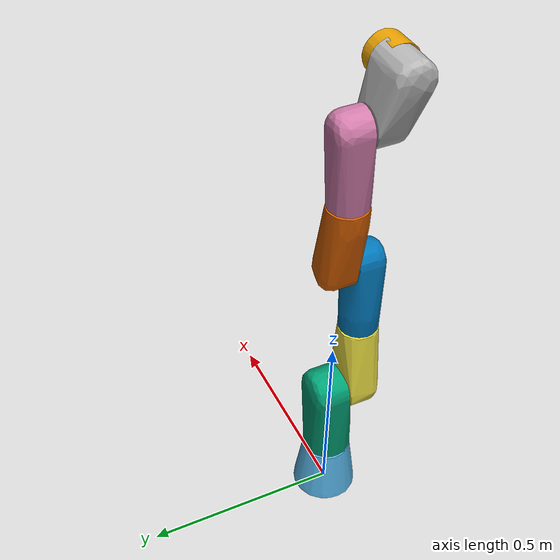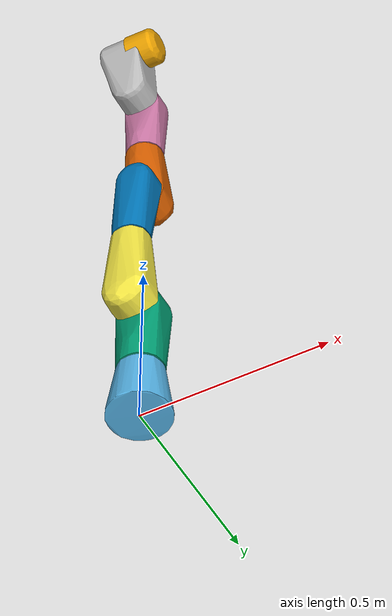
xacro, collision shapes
<?xml version="1.0" encoding="utf-8"?>

<robot xmlns:xacro="http://www.ros.org/wiki/xacro" name="rizon">
  <!-- 'rizon_type' values: Rizon4, Rizon4s, Rizon10, Rizon10s -->
  <xacro:arg name="rizon_type" default="Rizon4" />

  <!-- import main macro -->
  <xacro:include filename="$(find flexiv_description)/urdf/rizon_macro.xacro" />

  <!-- parameters -->
  <xacro:arg name="arm_prefix" default="" />
  <xacro:arg name="robot_sn" default="" />
  <xacro:arg name="rdk_control_mode" default="joint_position" />
  <xacro:arg name="load_gripper" default="false" />
  <xacro:arg name="gripper_name" default="Flexiv-GN01" />
  <xacro:arg name="load_mounted_ft_sensor" default="false" />
  <xacro:arg name="use_fake_hardware" default="false" />
  <xacro:arg name="fake_sensor_commands" default="false" />

  <xacro:rizon_robot
    rizon_type="$(arg rizon_type)"
    arm_prefix="$(arg arm_prefix)"
    robot_sn="$(arg robot_sn)"
    rdk_control_mode="$(arg rdk_control_mode)"
    load_gripper="$(arg load_gripper)"
    gripper_name="$(arg gripper_name)"
    use_fake_hardware="$(arg use_fake_hardware)"
    load_mounted_ft_sensor="$(arg load_mounted_ft_sensor)"
    fake_sensor_commands="$(arg fake_sensor_commands)">
  </xacro:rizon_robot>

</robot>

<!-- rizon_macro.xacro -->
<robot xmlns:xacro="http://wiki.ros.org/xacro">

  <xacro:macro name="rizon_robot"
    params="
    rizon_type
    arm_prefix
    robot_sn
    rdk_control_mode:='joint_position'
    load_gripper:=false
    gripper_name:='Flexiv-GN01'
    load_mounted_ft_sensor:=false
    use_fake_hardware:=false
    fake_sensor_commands:=false
    ">

    <!-- Prefix defaults to 'arm_prefix_robot_sn' -->
    <xacro:property name="prefix" value="${arm_prefix + robot_sn + '_'}" />

    <!-- FT sensor mounting only supported for Rizon4, Rizon4R and Rizon10 -->
    <xacro:unless value="${rizon_type=='Rizon4' or rizon_type=='Rizon4R' or rizon_type=='Rizon10'}">
      <xacro:property name="load_mounted_ft_sensor" value="false" />
    </xacro:unless>

    <!-- Load gripper -->
    <xacro:if value="${load_gripper and gripper_name=='Flexiv-GN01'}">
      <xacro:include filename="$(find flexiv_description)/urdf/grav_macro.xacro" />
      <xacro:flexiv_GN01 prefix="${prefix}" mesh_prefix_path="package://flexiv_description/" />
    </xacro:if>

    <!-- Rizon4, Rizon4M, Rizon4R or Rizon4s -->
    <xacro:if
      value="${rizon_type=='Rizon4' or rizon_type=='Rizon4M' or rizon_type=='Rizon4R' or rizon_type=='Rizon4s'}">
      <!-- Rizon4R -->
      <xacro:if value="${rizon_type=='Rizon4R'}">
        <xacro:include filename="$(find flexiv_description)/urdf/rizon4r_joints_links.xacro" />
        <xacro:rizon4r_joints_links rizon_type="${rizon_type}" prefix="${prefix}"
          load_mounted_ft_sensor="${load_mounted_ft_sensor}"
          mesh_prefix_path="package://flexiv_description/" />
      </xacro:if>

      <!-- Rizon4, Rizon4M or Rizon4s -->
      <xacro:unless value="${rizon_type=='Rizon4R'}">
        <xacro:include filename="$(find flexiv_description)/urdf/rizon4_joints_links.xacro" />
        <xacro:rizon4_joints_links rizon_type="${rizon_type}" prefix="${prefix}"
          load_mounted_ft_sensor="${load_mounted_ft_sensor}"
          mesh_prefix_path="package://flexiv_description/" />
      </xacro:unless>

      <!-- ros2 control include -->
      <xacro:include filename="$(find flexiv_description)/urdf/rizon4.ros2_control.xacro" />
      <xacro:rizon4_ros2_control prefix="${prefix}" robot_sn="${robot_sn}"
        rdk_control_mode="${rdk_control_mode}"
        use_fake_hardware="${use_fake_hardware}"
        fake_sensor_commands="${fake_sensor_commands}"
      />
    </xacro:if>

    <!-- Rizon10 or 10s-->
    <xacro:if value="${rizon_type=='Rizon10' or rizon_type=='Rizon10s'}">
      <xacro:include filename="$(find flexiv_description)/urdf/rizon10_joints_links.xacro" />
      <xacro:rizon10_joints_links rizon_type="${rizon_type}" prefix="${prefix}"
        load_mounted_ft_sensor="${load_mounted_ft_sensor}"
        mesh_prefix_path="package://flexiv_description/" />

      <!-- ros2 control include -->
      <xacro:include filename="$(find flexiv_description)/urdf/rizon10.ros2_control.xacro" />
      <xacro:rizon10_ros2_control prefix="${prefix}" robot_sn="${robot_sn}"
        rdk_control_mode="${rdk_control_mode}"
        use_fake_hardware="${use_fake_hardware}"
        fake_sensor_commands="${fake_sensor_commands}"
      />
    </xacro:if>

  </xacro:macro>

</robot>

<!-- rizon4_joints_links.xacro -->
<robot xmlns:xacro="http://www.ros.org/wiki/xacro">

  <xacro:macro name="rizon4_joints_links"
    params="rizon_type prefix load_mounted_ft_sensor mesh_prefix_path">

    <!-- JOINTS-->
    <joint name="${prefix}base_joint" type="fixed">
      <parent link="world" />
      <child link="${prefix}base_link" />
      <origin xyz="0.0 0.0 0.0" rpy="0.0 0.0 0.0" />
    </joint>

    <joint name="${prefix}joint1" type="revolute">
      <parent link="${prefix}base_link" />
      <child link="${prefix}link1" />
      <origin xyz="0.0 0.0 0.155" rpy="0 0 ${-pi}" />
      <axis xyz="0 0 1" />
      <limit effort="123" lower="-2.8798" upper="2.8798" velocity="2.0944" />
      <safety_controller k_position="100.0" k_velocity="40.0" soft_lower_limit="-2.7925"
        soft_upper_limit="2.7925" />
    </joint>

    <joint name="${prefix}joint2" type="revolute">
      <parent link="${prefix}link1" />
      <child link="${prefix}link2" />
      <origin xyz="0.0 0.03 0.210" rpy="0 0 0" />
      <axis xyz="0 1 0" />
      <limit effort="123" lower="-2.3562" upper="2.3562" velocity="2.0944" />
      <safety_controller k_position="100.0" k_velocity="40.0" soft_lower_limit="-2.2689"
        soft_upper_limit="2.2689" />
    </joint>

    <joint name="${prefix}joint3" type="revolute">
      <parent link="${prefix}link2" />
      <child link="${prefix}link3" />
      <origin xyz="0.0 0.035 0.205" rpy="0 0 0" />
      <axis xyz="0 0 1" />
      <limit effort="64" lower="-3.0543" upper="3.0543" velocity="2.4435" />
      <safety_controller k_position="100.0" k_velocity="40.0" soft_lower_limit="-2.9671"
        soft_upper_limit="2.9671" />
    </joint>

    <joint name="${prefix}joint4" type="revolute">
      <parent link="${prefix}link3" />
      <child link="${prefix}link4" />
      <origin xyz="-0.02 -0.03 0.19" rpy="0 0 ${-pi}" />
      <axis xyz="0 1 0" />
      <limit effort="64" lower="-1.9548" upper="2.7751" velocity="2.4435" />
      <safety_controller k_position="100.0" k_velocity="40.0" soft_lower_limit="-1.8675"
        soft_upper_limit="2.6878" />
    </joint>

    <joint name="${prefix}joint5" type="revolute">
      <parent link="${prefix}link4" />
      <child link="${prefix}link5" />
      <origin xyz="-0.02 0.025 0.195" rpy="0 0 ${-pi}" />
      <axis xyz="0 0 1" />
      <limit effort="39" lower="-3.0543" upper="3.0543" velocity="4.8869" />
      <safety_controller k_position="100.0" k_velocity="40.0" soft_lower_limit="-2.9671"
        soft_upper_limit="2.9671" />
    </joint>

    <joint name="${prefix}joint6" type="revolute">
      <parent link="${prefix}link5" />
      <child link="${prefix}link6" />
      <origin xyz="0.0 0.03 0.19" rpy="0 0 0" />
      <axis xyz="0 1 0" />
      <limit effort="39" lower="-1.4835" upper="4.6251" velocity="4.8869" />
      <safety_controller k_position="100.0" k_velocity="40.0" soft_lower_limit="-1.3963"
        soft_upper_limit="4.5379" />
    </joint>

    <joint name="${prefix}joint7" type="revolute">
      <parent link="${prefix}link6" />
      <child link="${prefix}link7" />
      <origin xyz="-0.015 0.073 0.11" rpy="0 ${-pi/2} 0" />
      <axis xyz="0 0 1" />
      <limit effort="39" lower="-3.0543" upper="3.0543" velocity="4.8869" />
      <safety_controller k_position="100.0" k_velocity="40.0" soft_lower_limit="-2.9671"
        soft_upper_limit="2.9671" />
    </joint>

    <joint name="${prefix}link7_to_flange" type="fixed">
      <parent link="${prefix}link7" />
      <xacro:if value="${load_mounted_ft_sensor}">
        <child link="${prefix}wrist-sensor.base_link" />
      </xacro:if>
      <xacro:unless value="${load_mounted_ft_sensor}">
        <child link="${prefix}flange" />
      </xacro:unless>
      <xacro:if value="${rizon_type=='Rizon4' or rizon_type=='Rizon4M'}">
        <origin xyz="0.0 0.0 0.081" rpy="0 0 ${-pi}" />
      </xacro:if>
      <xacro:if value="${rizon_type=='Rizon4s'}">
        <origin xyz="0.0 0.0 0.124" rpy="0 0 ${-pi}" />
      </xacro:if>
    </joint>

    <!-- LINKS -->
    <link name="world">
    </link>

    <link name="${prefix}base_link">
      <inertial>
        <mass value="3.8" />
        <origin rpy="0 0 0" xyz="0.0 -0.0 0.09" />
        <inertia ixx="0.02" ixy="0.0" ixz="0.0" iyy="0.02" iyz="0.0" izz="0.01" />
      </inertial>
      <visual name="shell">
        <origin xyz="0 0 0" rpy="0 0 0" />
        <geometry>
          <mesh filename="${mesh_prefix_path}meshes/${rizon_type}/visual/link0.obj" />
        </geometry>
      </visual>
      <collision name="convex_mesh">
        <origin xyz="0 0 0" rpy="0 0 0" />
        <geometry>
          <mesh filename="${mesh_prefix_path}meshes/${rizon_type}/collision/link0.stl" />
        </geometry>
      </collision>
      <workspace>
        <origin rpy="0 0 0" xyz="0 0 0.365" />
        <geometry>
          <sphere radius="0.890" />
        </geometry>
      </workspace>
    </link>

    <link name="${prefix}link1">
      <inertial>
        <mass value="3.6" />
        <origin rpy="0 0 0" xyz="0.0 0.0 0.15" />
        <inertia ixx="0.03" ixy="0.0" ixz="0.0" iyy="0.03" iyz="0.0" izz="0.01" />
      </inertial>
      <visual name="shell">
        <origin xyz="0 0 0" rpy="0 0 0" />
        <geometry>
          <mesh filename="${mesh_prefix_path}meshes/${rizon_type}/visual/link1.obj" />
        </geometry>
      </visual>
      <visual name="ring">
        <origin rpy="0 0 0" xyz="0 0 -0.0025" />
        <geometry>
          <mesh filename="${mesh_prefix_path}meshes/${rizon_type}/visual/ring.obj"
            scale="0.062 0.062 0.002" />
        </geometry>
      </visual>
      <collision name="convex_mesh">
        <origin xyz="0 0 0" rpy="0 0 0" />
        <geometry>
          <mesh filename="${mesh_prefix_path}meshes/${rizon_type}/collision/link1.stl" />
        </geometry>
      </collision>
    </link>

    <link name="${prefix}link2">
      <inertial>
        <mass value="2.7" />
        <origin rpy="0 0 0" xyz="-0.0 0.04 0.1" />
        <inertia ixx="0.02" ixy="0.0" ixz="0.0" iyy="0.02" iyz="-0.0003" izz="0.004" />
      </inertial>
      <visual name="shell">
        <origin xyz="0 0 0" rpy="0 0 0" />
        <geometry>
          <mesh filename="${mesh_prefix_path}meshes/${rizon_type}/visual/link2.obj" />
        </geometry>
      </visual>
      <visual name="ring">
        <origin rpy="${pi/2} 0 0" xyz="0 -0.0025 0" />
        <geometry>
          <mesh filename="${mesh_prefix_path}meshes/${rizon_type}/visual/ring.obj"
            scale="0.062 0.062 0.002" />
        </geometry>
      </visual>
      <collision name="convex_mesh">
        <origin xyz="0 0 0" rpy="0 0 0" />
        <geometry>
          <mesh filename="${mesh_prefix_path}meshes/${rizon_type}/collision/link2.stl" />
        </geometry>
      </collision>
    </link>

    <link name="${prefix}link3">
      <inertial>
        <mass value="2.4" />
        <origin rpy="0 0 0" xyz="-0.01 -0.0 0.14" />
        <inertia ixx="0.01" ixy="0.0" ixz="-0.001" iyy="0.01" iyz="-0.0007" izz="0.004" />
      </inertial>
      <visual name="shell">
        <origin xyz="0 0 0" rpy="0 0 0" />
        <geometry>
          <mesh filename="${mesh_prefix_path}meshes/${rizon_type}/visual/link3.obj" />
        </geometry>
      </visual>
      <visual name="ring">
        <origin rpy="0 0 0" xyz="0 0 -0.0025" />
        <geometry>
          <mesh filename="${mesh_prefix_path}meshes/${rizon_type}/visual/ring.obj"
            scale="0.051 0.051 0.002" />
        </geometry>
      </visual>
      <collision name="convex_mesh">
        <origin xyz="0 0 0" rpy="0 0 0" />
        <geometry>
          <mesh filename="${mesh_prefix_path}meshes/${rizon_type}/collision/link3.stl" />
        </geometry>
      </collision>
    </link>

    <link name="${prefix}link4">
      <inertial>
        <mass value="2.4" />
        <origin rpy="0 0 0" xyz="-0.01 0.03 0.1" />
        <inertia ixx="0.02" ixy="0.0" ixz="-0.002" iyy="0.02" iyz="-0.001" izz="0.003" />
      </inertial>
      <visual name="shell">
        <origin xyz="0 0 0" rpy="0 0 0" />
        <geometry>
          <mesh filename="${mesh_prefix_path}meshes/${rizon_type}/visual/link4.obj" />
        </geometry>
      </visual>
      <visual name="ring">
        <origin rpy="${pi/2} 0 0" xyz="0 -0.0025 0" />
        <geometry>
          <mesh filename="${mesh_prefix_path}meshes/${rizon_type}/visual/ring.obj"
            scale="0.051 0.051 0.002" />
        </geometry>
      </visual>
      <collision name="convex_mesh">
        <origin xyz="0 0 0" rpy="0 0 0" />
        <geometry>
          <mesh filename="${mesh_prefix_path}meshes/${rizon_type}/collision/link4.stl" />
        </geometry>
      </collision>
    </link>

    <link name="${prefix}link5">
      <inertial>
        <mass value="2.3" />
        <origin rpy="0 0 0" xyz="0.0 0.0 0.14" />
        <inertia ixx="0.01" ixy="0.0" ixz="0.0" iyy="0.01" iyz="0.001" izz="0.004" />
      </inertial>
      <visual name="shell">
        <origin xyz="0 0 0" rpy="0 0 0" />
        <geometry>
          <mesh filename="${mesh_prefix_path}meshes/${rizon_type}/visual/link5.obj" />
        </geometry>
      </visual>
      <visual name="ring">
        <origin rpy="0 0 0" xyz="0 0 -0.0025" />
        <geometry>
          <mesh filename="${mesh_prefix_path}meshes/${rizon_type}/visual/ring.obj"
            scale="0.051 0.051 0.002" />
        </geometry>
      </visual>
      <collision name="convex_mesh">
        <origin xyz="0 0 0" rpy="0 0 0" />
        <geometry>
          <mesh filename="${mesh_prefix_path}meshes/${rizon_type}/collision/link5.stl" />
        </geometry>
      </collision>
    </link>

    <link name="${prefix}link6">
      <inertial>
        <mass value="2.2" />
        <origin rpy="0 0 0" xyz="0.02 0.06 0.07" />
        <inertia ixx="0.01" ixy="0.0" ixz="-0.001" iyy="0.01" iyz="0.002" izz="0.004" />
      </inertial>
      <visual name="shell">
        <origin xyz="0 0 0" rpy="0 0 0" />
        <geometry>
          <mesh filename="${mesh_prefix_path}meshes/${rizon_type}/visual/link6.obj" />
        </geometry>
      </visual>
      <visual name="ring">
        <origin rpy="${pi/2} 0 0" xyz="0 -0.0025 0" />
        <geometry>
          <mesh filename="${mesh_prefix_path}meshes/${rizon_type}/visual/ring.obj"
            scale="0.051 0.051 0.002" />
        </geometry>
      </visual>
      <collision name="convex_mesh">
        <origin xyz="0 0 0" rpy="0 0 0" />
        <geometry>
          <mesh filename="${mesh_prefix_path}meshes/${rizon_type}/collision/link6.stl" />
        </geometry>
      </collision>
    </link>

    <link name="${prefix}link7">
      <xacro:if value="${rizon_type=='Rizon4' or rizon_type=='Rizon4M'}">
        <inertial>
          <mass value="0.8" />
          <origin rpy="0 0 0" xyz="0.0 0.0 0.03" />
          <inertia ixx="0.001" ixy="0.0" ixz="0.0" iyy="0.001" iyz="0.0" izz="0.001" />
        </inertial>
        <visual name="shell">
          <origin xyz="0 0 0" rpy="0 0 0" />
          <geometry>
            <mesh filename="${mesh_prefix_path}meshes/${rizon_type}/visual/link7.obj" />
          </geometry>
        </visual>
        <visual name="ring">
          <origin rpy="0 0 0" xyz="0 0 -0.0025" />
          <geometry>
            <mesh filename="${mesh_prefix_path}meshes/${rizon_type}/visual/ring.obj"
              scale="0.051 0.051 0.002" />
          </geometry>
        </visual>
        <collision name="convex_mesh">
          <origin xyz="0 0 0" rpy="0 0 0" />
          <geometry>
            <mesh filename="${mesh_prefix_path}meshes/${rizon_type}/collision/link7.stl" />
          </geometry>
        </collision>
      </xacro:if>
      <xacro:if value="${rizon_type=='Rizon4s'}">
        <inertial>
          <mass value="1.4" />
          <origin xyz="0.0 0.0 0.05" rpy="0 0 0" />
          <inertia ixx="0.001" ixy="0.0" ixz="0.0" iyy="0.001" iyz="0.0" izz="0.001" />
        </inertial>
        <visual name="shell">
          <origin xyz="0 0 0" rpy="0 0 0" />
          <geometry>
            <mesh filename="${mesh_prefix_path}meshes/${rizon_type}/visual/link7.obj" />
          </geometry>
        </visual>
        <visual name="ring">
          <origin rpy="0 0 0" xyz="0 0 -0.0025" />
          <geometry>
            <mesh filename="${mesh_prefix_path}meshes/${rizon_type}/visual/ring.obj"
              scale="0.051 0.051 0.002" />
          </geometry>
        </visual>
        <collision name="hull">
          <origin xyz="0 0 0" rpy="0 0 0" />
          <geometry>
            <mesh filename="${mesh_prefix_path}meshes/${rizon_type}/collision/link7.stl" />
          </geometry>
        </collision>
      </xacro:if>
    </link>

    <!-- FT03-D1 wrist sensor -->
    <xacro:if value="${load_mounted_ft_sensor}">
      <joint name="${prefix}wrist-sensor.remove_rizon_flange_body" type="fixed">
        <origin rpy="0 0 0" xyz="0 0 -0.016" />
        <parent link="${prefix}wrist-sensor.base_link" />
        <child link="${prefix}wrist-sensor.proximal_link" />
        <axis xyz="0 0 1" />
      </joint>

      <joint name="${prefix}wrist-sensor.proximal_link_to_sensing_frame" type="fixed">
        <origin rpy="0 0 0" xyz="0 0 0.0235" />
        <parent link="${prefix}wrist-sensor.proximal_link" />
        <child link="${prefix}wrist-sensor.distal_link" />
        <axis xyz="0 0 1" />
      </joint>

      <joint name="${prefix}wrist-sensor.sensing_frame_to_flange" type="fixed">
        <parent link="${prefix}wrist-sensor.distal_link" />
        <child link="${prefix}flange" />
        <origin rpy="0 0 0" xyz="0.0 0.0 0.0285" />
      </joint>

      <link name="${prefix}wrist-sensor.base_link">
        <inertial>
          <mass value="0.0" />
          <origin rpy="0 0 0" xyz="0.0 0.0 0.0" />
          <inertia ixx="0.0" ixy="0.0" ixz="0.0" iyy="0.0" iyz="0.0" izz="0.0" />
        </inertial>
      </link>

      <link name="${prefix}wrist-sensor.proximal_link">
        <inertial>
          <origin rpy="0 0 0" xyz="0 0 0.01955" />
          <mass value="0.149" />
          <inertia ixx="0.0" ixy="0.0" ixz="0.0" iyy="0.0" iyz="0.0" izz="0.0" />
        </inertial>
        <visual name="shell">
          <origin rpy="0 0 0" xyz="0 0 0" />
          <geometry>
            <mesh filename="${mesh_prefix_path}meshes/FT03-D1/visual/proximal.obj"
              scale="1 1 1" />
          </geometry>
        </visual>
        <collision name="convex_mesh">
          <origin xyz="0 0 0" rpy="0 0 0" />
          <geometry>
            <mesh filename="${mesh_prefix_path}meshes/FT03-D1/collision/proximal.stl" />
          </geometry>
        </collision>
      </link>

      <link name="${prefix}wrist-sensor.distal_link">
        <inertial>
          <mass value="0.249" />
          <origin rpy="0 0 0" xyz="0 0 0.0085" />
          <inertia ixx="1.05E-4" ixy="0" ixz="0" iyy="1.05E-4" iyz="-0" izz="1.81E-4" />
        </inertial>
        <visual name="shell">
          <origin rpy="0 0 0" xyz="0 0 0" />
          <geometry>
            <mesh filename="${mesh_prefix_path}meshes/FT03-D1/visual/distal.obj" />
          </geometry>
        </visual>
        <visual name="ring">
          <origin rpy="0 0 0" xyz="0 0 0" />
          <geometry>
            <mesh filename="${mesh_prefix_path}meshes/FT03-D1/visual/ring.obj"
              scale="0.039 0.039 0.002" />
          </geometry>
        </visual>
        <collision name="convex_mesh">
          <origin xyz="0 0 0" rpy="0 0 0" />
          <geometry>
            <mesh filename="${mesh_prefix_path}meshes/FT03-D1/collision/distal.stl" />
          </geometry>
        </collision>
      </link>
    </xacro:if>

    <link name="${prefix}flange">
      <inertial>
        <mass value="0.0" />
        <origin rpy="0 0 0" xyz="0.0 0.0 0.0" />
        <inertia ixx="0.0" ixy="0.0" ixz="0.0" iyy="0.0" iyz="0.0" izz="0.0" />
      </inertial>
    </link>

  </xacro:macro>

</robot>
